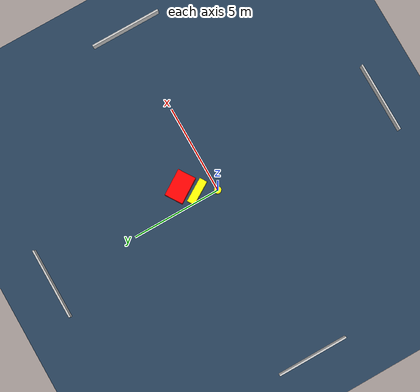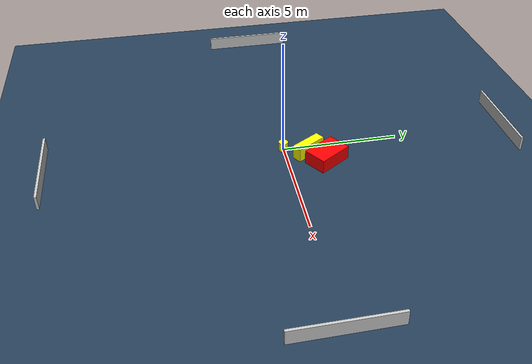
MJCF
<?xml version="1.0" ?>
<mujoco model="generated_environment">
  <option timestep="0.01" integrator="RK4" cone="elliptic"/>
  <default>
    <geom density="1"/>
  </default>
  <asset>
    <texture builtin="gradient" height="3072" name="skybox" rgb1="0.3 0.5 0.7" rgb2="0 0 0" type="skybox" width="512"/>
    <texture builtin="checker" height="300" name="groundplane" rgb1="0.2 0.3 0.4" rgb2="0.1 0.2 0.3" type="2d" width="300"/>
    <material name="groundplane" reflectance="0.2" texrepeat="5 5" texture="groundplane"/>
  </asset>
  <worldbody>
    <light dir="0 0 -1" directional="true" pos="0 0 1.5"/>
    <geom condim="3" friction="0.5 0.005 0.001" material="groundplane" name="floor" pos="0 0 0" size="0 0 0.05" type="plane"/>
    <body name="walls">
      <geom name="wall_1" condim="4" pos="-10.0 0.0 0.3" rgba="0.800000011920929 0.800000011920929 0.800000011920929 1.0" size="0.05 2.0 0.3" type="box"/>
      <geom name="wall_2" condim="4" pos="10.0 0.0 0.3" rgba="0.800000011920929 0.800000011920929 0.800000011920929 1.0" size="0.05 2.0 0.3" type="box"/>
      <geom name="wall_3" condim="4" pos="0.0 -10.0 0.3" rgba="0.800000011920929 0.800000011920929 0.800000011920929 1.0" size="2.0 0.05 0.3" type="box"/>
      <geom name="wall_4" condim="4" pos="0.0 10.0 0.3" rgba="0.800000011920929 0.800000011920929 0.800000011920929 1.0" size="2.0 0.05 0.3" type="box"/>
    </body>
    <body name="robot">
      <joint name="joint_x" type="slide" pos="0 0 0" axis="1 0 0"/>
      <joint name="joint_y" type="slide" pos="0 0 0" axis="0 1 0"/>
      <geom name="robot" type="cylinder" pos="0.0 0.0 0.2" size="0.2 0.2 0.0" mass="5.0" friction="1.0 0.005 0.0001" condim="4" rgba="1.0 1.0 0.0 1.0"/>
    </body>
    <body name="obstacle_1_movable">
      <geom name="obstacle_1_movable" condim="4" pos="0.4555775453532285 0.9908914390795506 0.3" euler="0 0 301.6252593046344" friction="0.0 0.005 0.001" rgba="1.0 1.0 0.0 1.0" size="0.7009024037287706 0.21507298512516493 0.3" type="box" mass="0.1"/>
      <joint type="free"/>
    </body>
    <body name="obstacle_2_static">
      <geom name="obstacle_2_static" condim="4" pos="1.119598655273409 1.6337362692521782 0.3" euler="0 0 213.040935122962" friction="0.0 0.005 0.001" rgba="1.0 0.0 0.0 1.0" size="0.5164297215799297 0.7675415914709376 0.3" type="box"/>
    </body>
  </worldbody>
  <actuator>
    <motor name="actuator_x" joint="joint_x" gear="1" ctrlrange="-1 1"/>
    <motor name="actuator_y" joint="joint_y" gear="1" ctrlrange="-1 1"/>
  </actuator>
</mujoco>
